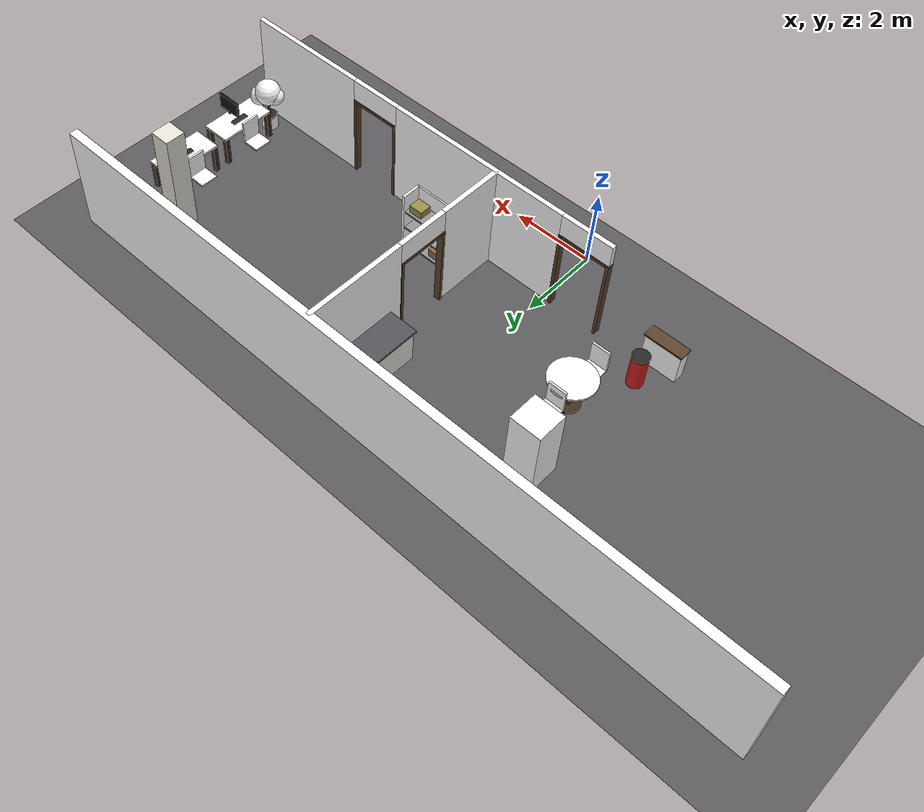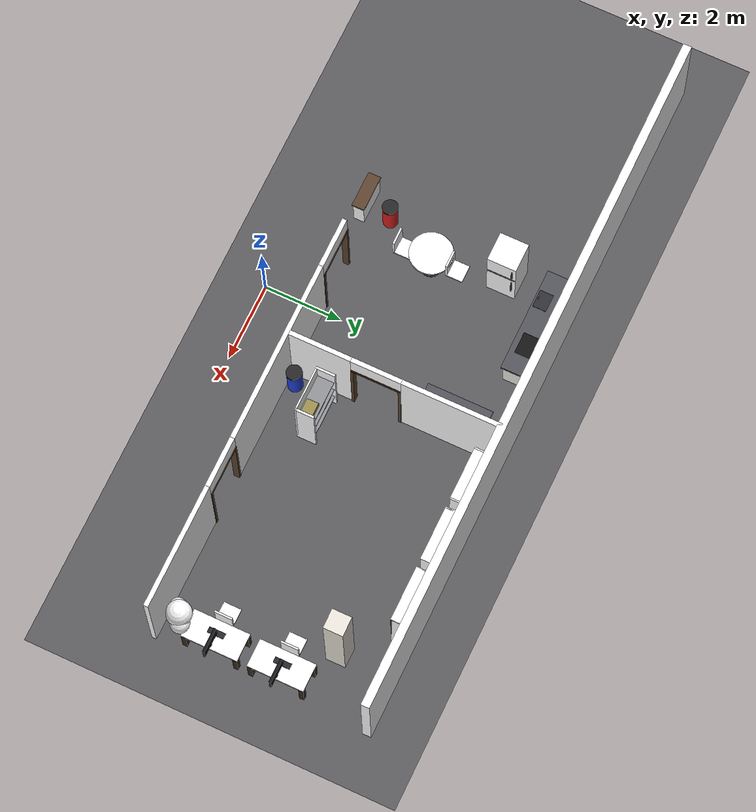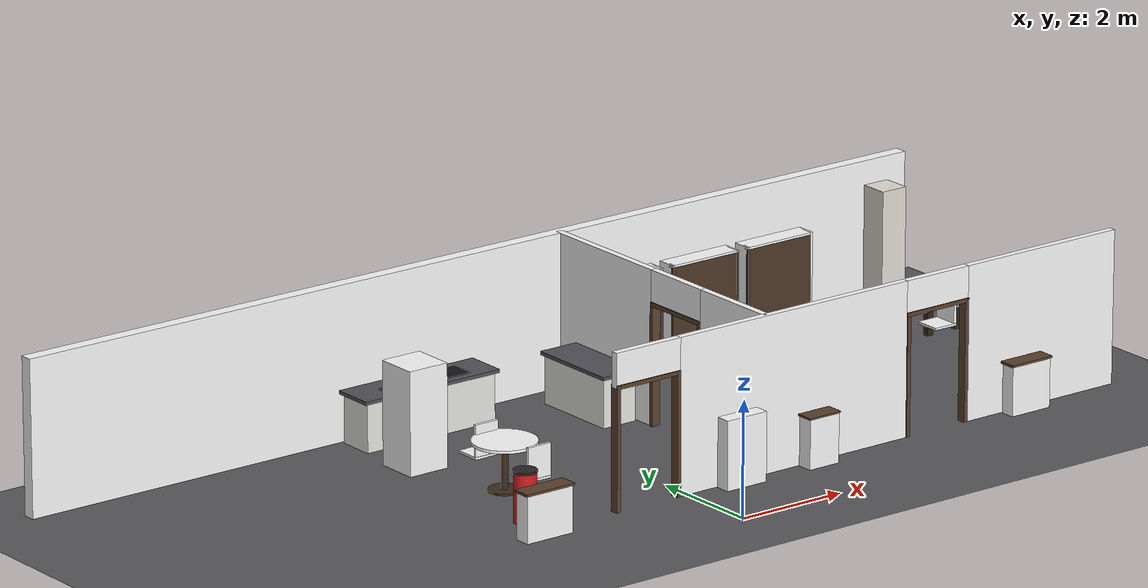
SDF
<sdf version="1.9">
 <world name="dan_house">
  <model name="ground_plane">
   <static>true</static>
   <link name="link">
    <collision name="c"><geometry><plane><normal>0 0 1</normal><size>90 90</size></plane></geometry></collision>
    <visual name="v">
     <geometry><plane><normal>0 0 1</normal><size>90 90</size></plane></geometry>
     <material><diffuse>0.35 0.35 0.36 1</diffuse></material>
    </visual>
   </link>
  </model>
  <model name="wall_north_0">
   <pose>0.000 7.0 1.35 0 0 0</pose>
   <static>true</static>
   <link name="link">
    <collision name="c"><geometry><box><size>18.000 0.22 2.7</size></box></geometry></collision>
    <visual name="v">
     <geometry><box><size>18.000 0.22 2.7</size></box></geometry>
     <material>
      <diffuse>1 1 1 1</diffuse>
      <pbr>
       <metal>
        <albedo_map>textures/wallpaper.jpg</albedo_map>
        <metalness>0.0</metalness>
        <roughness>0.85</roughness>
       </metal>
      </pbr>
     </material>
    </visual>
   </link>
  </model>
  <model name="wall_corr_north_2">
   <pose>2.200 1.5 1.35 0 0 0</pose>
   <static>true</static>
   <link name="link">
    <collision name="c"><geometry><box><size>4.700 0.12 2.7</size></box></geometry></collision>
    <visual name="v">
     <geometry><box><size>4.700 0.12 2.7</size></box></geometry>
     <material>
      <diffuse>1 1 1 1</diffuse>
      <pbr>
       <metal>
        <albedo_map>textures/wallpaper.jpg</albedo_map>
        <metalness>0.0</metalness>
        <roughness>0.85</roughness>
       </metal>
      </pbr>
     </material>
    </visual>
   </link>
  </model>
  <model name="wall_corr_north_3">
   <pose>7.425 1.5 1.35 0 0 0</pose>
   <static>true</static>
   <link name="link">
    <collision name="c"><geometry><box><size>3.150 0.12 2.7</size></box></geometry></collision>
    <visual name="v">
     <geometry><box><size>3.150 0.12 2.7</size></box></geometry>
     <material>
      <diffuse>1 1 1 1</diffuse>
      <pbr>
       <metal>
        <albedo_map>textures/wallpaper.jpg</albedo_map>
        <metalness>0.0</metalness>
        <roughness>0.85</roughness>
       </metal>
      </pbr>
     </material>
    </visual>
   </link>
  </model>
  <model name="wall_corr_north_door_-0.8_p0">
   <pose>-1.415 1.5 1.075 0 0 0</pose>
   <static>true</static>
   <link name="link">
    <visual name="v">
     <geometry><box><size>0.07 0.160 2.15</size></box></geometry>
     <material><diffuse>0.36 0.26 0.18 1</diffuse></material>
    </visual>
   </link>
  </model>
  <model name="wall_corr_north_door_-0.8_p1">
   <pose>-0.18500000000000005 1.5 1.075 0 0 0</pose>
   <static>true</static>
   <link name="link">
    <visual name="v">
     <geometry><box><size>0.07 0.160 2.15</size></box></geometry>
     <material><diffuse>0.36 0.26 0.18 1</diffuse></material>
    </visual>
   </link>
  </model>
  <model name="wall_corr_north_door_-0.8_top">
   <pose>-0.8 1.5 2.1149999999999998 0 0 0</pose>
   <static>true</static>
   <link name="link">
    <visual name="v">
     <geometry><box><size>1.3 0.160 0.07</size></box></geometry>
     <material><diffuse>0.36 0.26 0.18 1</diffuse></material>
    </visual>
   </link>
  </model>
  <model name="wall_corr_north_door_-0.8_lintel">
   <pose>-0.8 1.5 2.4000000000000004 0 0 0</pose>
   <static>true</static>
   <link name="link">
    <visual name="v">
     <geometry><box><size>1.3 0.12 0.600</size></box></geometry>
     <material>
      <diffuse>1 1 1 1</diffuse>
      <pbr>
       <metal>
        <albedo_map>textures/wallpaper.jpg</albedo_map>
        <metalness>0.0</metalness>
        <roughness>0.85</roughness>
       </metal>
      </pbr>
     </material>
    </visual>
   </link>
  </model>
  <model name="wall_corr_north_door_5.2_p0">
   <pose>4.585 1.5 1.075 0 0 0</pose>
   <static>true</static>
   <link name="link">
    <visual name="v">
     <geometry><box><size>0.07 0.160 2.15</size></box></geometry>
     <material><diffuse>0.36 0.26 0.18 1</diffuse></material>
    </visual>
   </link>
  </model>
  <model name="wall_corr_north_door_5.2_p1">
   <pose>5.815 1.5 1.075 0 0 0</pose>
   <static>true</static>
   <link name="link">
    <visual name="v">
     <geometry><box><size>0.07 0.160 2.15</size></box></geometry>
     <material><diffuse>0.36 0.26 0.18 1</diffuse></material>
    </visual>
   </link>
  </model>
  <model name="wall_corr_north_door_5.2_top">
   <pose>5.2 1.5 2.1149999999999998 0 0 0</pose>
   <static>true</static>
   <link name="link">
    <visual name="v">
     <geometry><box><size>1.3 0.160 0.07</size></box></geometry>
     <material><diffuse>0.36 0.26 0.18 1</diffuse></material>
    </visual>
   </link>
  </model>
  <model name="wall_corr_north_door_5.2_lintel">
   <pose>5.2 1.5 2.4000000000000004 0 0 0</pose>
   <static>true</static>
   <link name="link">
    <visual name="v">
     <geometry><box><size>1.3 0.12 0.600</size></box></geometry>
     <material>
      <diffuse>1 1 1 1</diffuse>
      <pbr>
       <metal>
        <albedo_map>textures/wallpaper.jpg</albedo_map>
        <metalness>0.0</metalness>
        <roughness>0.85</roughness>
       </metal>
      </pbr>
     </material>
    </visual>
   </link>
  </model>
  <model name="wall_kitchen_study_0">
   <pose>1.66 2.325 1.35 0 0 0</pose>
   <static>true</static>
   <link name="link">
    <collision name="c"><geometry><box><size>0.12 1.650 2.7</size></box></geometry></collision>
    <visual name="v">
     <geometry><box><size>0.12 1.650 2.7</size></box></geometry>
     <material>
      <diffuse>1 1 1 1</diffuse>
      <pbr>
       <metal>
        <albedo_map>textures/wallpaper.jpg</albedo_map>
        <metalness>0.0</metalness>
        <roughness>0.85</roughness>
       </metal>
      </pbr>
     </material>
    </visual>
   </link>
  </model>
  <model name="wall_kitchen_study_1">
   <pose>1.66 5.725 1.35 0 0 0</pose>
   <static>true</static>
   <link name="link">
    <collision name="c"><geometry><box><size>0.12 2.550 2.7</size></box></geometry></collision>
    <visual name="v">
     <geometry><box><size>0.12 2.550 2.7</size></box></geometry>
     <material>
      <diffuse>1 1 1 1</diffuse>
      <pbr>
       <metal>
        <albedo_map>textures/wallpaper.jpg</albedo_map>
        <metalness>0.0</metalness>
        <roughness>0.85</roughness>
       </metal>
      </pbr>
     </material>
    </visual>
   </link>
  </model>
  <model name="wall_kitchen_study_door_3.8_p0">
   <pose>1.66 3.1849999999999996 1.075 0 0 0</pose>
   <static>true</static>
   <link name="link">
    <visual name="v">
     <geometry><box><size>0.160 0.07 2.15</size></box></geometry>
     <material><diffuse>0.36 0.26 0.18 1</diffuse></material>
    </visual>
   </link>
  </model>
  <model name="wall_kitchen_study_door_3.8_p1">
   <pose>1.66 4.415 1.075 0 0 0</pose>
   <static>true</static>
   <link name="link">
    <visual name="v">
     <geometry><box><size>0.160 0.07 2.15</size></box></geometry>
     <material><diffuse>0.36 0.26 0.18 1</diffuse></material>
    </visual>
   </link>
  </model>
  <model name="wall_kitchen_study_door_3.8_top">
   <pose>1.66 3.8 2.1149999999999998 0 0 0</pose>
   <static>true</static>
   <link name="link">
    <visual name="v">
     <geometry><box><size>0.160 1.3 0.07</size></box></geometry>
     <material><diffuse>0.36 0.26 0.18 1</diffuse></material>
    </visual>
   </link>
  </model>
  <model name="wall_kitchen_study_door_3.8_lintel">
   <pose>1.66 3.8 2.4000000000000004 0 0 0</pose>
   <static>true</static>
   <link name="link">
    <visual name="v">
     <geometry><box><size>0.12 1.3 0.600</size></box></geometry>
     <material>
      <diffuse>1 1 1 1</diffuse>
      <pbr>
       <metal>
        <albedo_map>textures/wallpaper.jpg</albedo_map>
        <metalness>0.0</metalness>
        <roughness>0.85</roughness>
       </metal>
      </pbr>
     </material>
    </visual>
   </link>
  </model>
  <model name="window_n3">
   <pose>-1.2 6.95 1.6 0 0 0</pose>
   <static>true</static>
   <link name="link">
    <visual name="pane">
     <geometry><box><size>1.62 0.06 1.2</size></box></geometry>
     <material><diffuse>0.55 0.72 0.9 1</diffuse><emissive>0.14 0.2 0.3</emissive></material>
    </visual>
    <visual name="ft">
     <pose>0 0 0.65 0 0 0</pose>
     <geometry><box><size>1.80 0.1 0.08</size></box></geometry>
     <material><diffuse>0.95 0.95 0.95 1</diffuse></material>
    </visual>
    <visual name="fb">
     <pose>0 0 -0.65 0 0 0</pose>
     <geometry><box><size>1.80 0.1 0.08</size></box></geometry>
     <material><diffuse>0.95 0.95 0.95 1</diffuse></material>
    </visual>
    <visual name="fl">
     <pose>-0.90 0 0 0 0 0</pose>
     <geometry><box><size>0.1 0.1 1.2</size></box></geometry>
     <material><diffuse>0.95 0.95 0.95 1</diffuse></material>
    </visual>
    <visual name="fr">
     <pose>0.90 0 0 0 0 0</pose>
     <geometry><box><size>0.1 0.1 1.2</size></box></geometry>
     <material><diffuse>0.95 0.95 0.95 1</diffuse></material>
    </visual>
   </link>
  </model>
  <model name="window_n4">
   <pose>3.4 6.95 1.6 0 0 0</pose>
   <static>true</static>
   <link name="link">
    <visual name="pane">
     <geometry><box><size>1.62 0.06 1.2</size></box></geometry>
     <material><diffuse>0.55 0.72 0.9 1</diffuse><emissive>0.14 0.2 0.3</emissive></material>
    </visual>
    <visual name="ft">
     <pose>0 0 0.65 0 0 0</pose>
     <geometry><box><size>1.80 0.1 0.08</size></box></geometry>
     <material><diffuse>0.95 0.95 0.95 1</diffuse></material>
    </visual>
    <visual name="fb">
     <pose>0 0 -0.65 0 0 0</pose>
     <geometry><box><size>1.80 0.1 0.08</size></box></geometry>
     <material><diffuse>0.95 0.95 0.95 1</diffuse></material>
    </visual>
    <visual name="fl">
     <pose>-0.90 0 0 0 0 0</pose>
     <geometry><box><size>0.1 0.1 1.2</size></box></geometry>
     <material><diffuse>0.95 0.95 0.95 1</diffuse></material>
    </visual>
    <visual name="fr">
     <pose>0.90 0 0 0 0 0</pose>
     <geometry><box><size>0.1 0.1 1.2</size></box></geometry>
     <material><diffuse>0.95 0.95 0.95 1</diffuse></material>
    </visual>
   </link>
  </model>
  <model name="window_n5">
   <pose>7.0 6.95 1.6 0 0 0</pose>
   <static>true</static>
   <link name="link">
    <visual name="pane">
     <geometry><box><size>1.62 0.06 1.2</size></box></geometry>
     <material><diffuse>0.55 0.72 0.9 1</diffuse><emissive>0.14 0.2 0.3</emissive></material>
    </visual>
    <visual name="ft">
     <pose>0 0 0.65 0 0 0</pose>
     <geometry><box><size>1.80 0.1 0.08</size></box></geometry>
     <material><diffuse>0.95 0.95 0.95 1</diffuse></material>
    </visual>
    <visual name="fb">
     <pose>0 0 -0.65 0 0 0</pose>
     <geometry><box><size>1.80 0.1 0.08</size></box></geometry>
     <material><diffuse>0.95 0.95 0.95 1</diffuse></material>
    </visual>
    <visual name="fl">
     <pose>-0.90 0 0 0 0 0</pose>
     <geometry><box><size>0.1 0.1 1.2</size></box></geometry>
     <material><diffuse>0.95 0.95 0.95 1</diffuse></material>
    </visual>
    <visual name="fr">
     <pose>0.90 0 0 0 0 0</pose>
     <geometry><box><size>0.1 0.1 1.2</size></box></geometry>
     <material><diffuse>0.95 0.95 0.95 1</diffuse></material>
    </visual>
   </link>
  </model>
  <model name="kitchen_counter">
   <pose>-1.6 6.5 0 0 0 0.0</pose>
   <static>true</static>
   <link name="link">
    <collision name="c">
     <pose>0 0 0.45 0 0 0</pose>
     <geometry><box><size>2.6 0.65 0.9</size></box></geometry>
    </collision>
    <visual name="cab">
     <pose>0 0 0.425 0 0 0</pose>
     <geometry><box><size>2.6 0.65 0.85</size></box></geometry>
     <material><diffuse>0.92 0.92 0.9 1</diffuse></material>
    </visual>
    <visual name="top">
     <pose>0 0 0.88 0 0 0</pose>
     <geometry><box><size>2.72 0.74 0.06</size></box></geometry>
     <material><diffuse>0.32 0.32 0.35 1</diffuse></material>
    </visual>
    <visual name="sink">
     <pose>-0.6 -0.15 0.912 0 0 0</pose>
     <geometry><box><size>0.45 0.35 0.02</size></box></geometry>
     <material><diffuse>0.18 0.18 0.2 1</diffuse></material>
    </visual>
    <visual name="faucet">
     <pose>-0.6 -0.28 1.0 0 0 0</pose>
     <geometry><cylinder><radius>0.015</radius><length>0.22</length></cylinder></geometry>
     <material><diffuse>0.75 0.75 0.78 1</diffuse></material>
    </visual>
    <visual name="stove">
     <pose>0.6 0 0.912 0 0 0</pose>
     <geometry><box><size>0.55 0.45 0.02</size></box></geometry>
     <material><diffuse>0.08 0.08 0.08 1</diffuse></material>
    </visual>
   </link>
  </model>
  <model name="fridge">
   <pose>-2.66 5.2 0 0 0 1.5708</pose>
   <static>true</static>
   <link name="link">
    <collision name="c">
     <pose>0 0 0.9 0 0 0</pose>
     <geometry><box><size>0.75 0.75 1.8</size></box></geometry>
    </collision>
    <visual name="body">
     <pose>0 0 0.9 0 0 0</pose>
     <geometry><box><size>0.75 0.75 1.8</size></box></geometry>
     <material>
      <diffuse>1 1 1 1</diffuse>
      <pbr>
       <metal>
        <albedo_map>textures/metal.jpg</albedo_map>
        <metalness>0.0</metalness>
        <roughness>0.85</roughness>
       </metal>
      </pbr>
     </material>
    </visual>
    <visual name="split">
     <pose>0 -0.38 1.15 0 0 0</pose>
     <geometry><box><size>0.72 0.02 0.03</size></box></geometry>
     <material><diffuse>0.4 0.4 0.42 1</diffuse></material>
    </visual>
    <visual name="h1">
     <pose>0.28 -0.4 0.75 0 0 0</pose>
     <geometry><box><size>0.03 0.03 0.5</size></box></geometry>
     <material><diffuse>0.3 0.3 0.32 1</diffuse></material>
    </visual>
    <visual name="h2">
     <pose>0.28 -0.4 1.45 0 0 0</pose>
     <geometry><box><size>0.03 0.03 0.4</size></box></geometry>
     <material><diffuse>0.3 0.3 0.32 1</diffuse></material>
    </visual>
   </link>
  </model>
  <model name="counter_side">
   <pose>1.22 5.6 0 0 0 0.0</pose>
   <static>true</static>
   <link name="link">
    <collision name="c">
     <pose>0 0 0.45 0 0 0</pose>
     <geometry><box><size>0.65 1.6 0.9</size></box></geometry>
    </collision>
    <visual name="cab">
     <pose>0 0 0.425 0 0 0</pose>
     <geometry><box><size>0.65 1.6 0.85</size></box></geometry>
     <material><diffuse>0.92 0.92 0.9 1</diffuse></material>
    </visual>
    <visual name="top">
     <pose>0 0 0.88 0 0 0</pose>
     <geometry><box><size>0.74 1.7 0.06</size></box></geometry>
     <material><diffuse>0.32 0.32 0.35 1</diffuse></material>
    </visual>
   </link>
  </model>
  <model name="dining_table">
   <pose>-2.2 3.4 0 0 0 0</pose>
   <static>true</static>
   <link name="link">
    <collision name="top_c">
     <pose>0 0 0.835 0 0 0</pose>
     <geometry><cylinder><radius>0.55</radius><length>0.05</length></cylinder></geometry>
    </collision>
    <collision name="post_c">
     <pose>0 0 0.420 0 0 0</pose>
     <geometry><cylinder><radius>0.06</radius><length>0.78</length></cylinder></geometry>
    </collision>
    <visual name="top">
     <pose>0 0 0.835 0 0 0</pose>
     <geometry><cylinder><radius>0.55</radius><length>0.05</length></cylinder></geometry>
     <material>
      <diffuse>1 1 1 1</diffuse>
      <pbr>
       <metal>
        <albedo_map>textures/wood_dark.jpg</albedo_map>
        <metalness>0.0</metalness>
        <roughness>0.85</roughness>
       </metal>
      </pbr>
     </material>
    </visual>
    <visual name="post">
     <pose>0 0 0.420 0 0 0</pose>
     <geometry><cylinder><radius>0.06</radius><length>0.78</length></cylinder></geometry>
     <material><diffuse>0.25 0.18 0.12 1</diffuse></material>
    </visual>
    <visual name="base">
     <pose>0 0 0.015 0 0 0</pose>
     <geometry><cylinder><radius>0.28</radius><length>0.03</length></cylinder></geometry>
     <material><diffuse>0.25 0.18 0.12 1</diffuse></material>
    </visual>
   </link>
  </model>
  <model name="chair">
   <pose>-2.2 2.7 0 0 0 0.0</pose>
   <static>true</static>
   <link name="link">
    <collision name="c">
     <pose>0 0 0.475 0 0 0</pose>
     <geometry><box><size>0.45 0.45 0.95</size></box></geometry>
    </collision>
    <visual name="seat">
     <pose>0 0 0.45 0 0 0</pose>
     <geometry><box><size>0.45 0.45 0.04</size></box></geometry>
     <material>
      <diffuse>1 1 1 1</diffuse>
      <pbr>
       <metal>
        <albedo_map>textures/wood_dark.jpg</albedo_map>
        <metalness>0.0</metalness>
        <roughness>0.85</roughness>
       </metal>
      </pbr>
     </material>
    </visual>
    <visual name="back">
     <pose>0 -0.2 0.75 0 0 0</pose>
     <geometry><box><size>0.45 0.05 0.55</size></box></geometry>
     <material>
      <diffuse>1 1 1 1</diffuse>
      <pbr>
       <metal>
        <albedo_map>textures/wood_dark.jpg</albedo_map>
        <metalness>0.0</metalness>
        <roughness>0.85</roughness>
       </metal>
      </pbr>
     </material>
    </visual>
   </link>
  </model>
  <model name="chair_2">
   <pose>-2.2 4.1 0 0 0 0.0</pose>
   <static>true</static>
   <link name="link">
    <collision name="c">
     <pose>0 0 0.475 0 0 0</pose>
     <geometry><box><size>0.45 0.45 0.95</size></box></geometry>
    </collision>
    <visual name="seat">
     <pose>0 0 0.45 0 0 0</pose>
     <geometry><box><size>0.45 0.45 0.04</size></box></geometry>
     <material>
      <diffuse>1 1 1 1</diffuse>
      <pbr>
       <metal>
        <albedo_map>textures/wood_dark.jpg</albedo_map>
        <metalness>0.0</metalness>
        <roughness>0.85</roughness>
       </metal>
      </pbr>
     </material>
    </visual>
    <visual name="back">
     <pose>0 -0.2 0.75 0 0 0</pose>
     <geometry><box><size>0.45 0.05 0.55</size></box></geometry>
     <material>
      <diffuse>1 1 1 1</diffuse>
      <pbr>
       <metal>
        <albedo_map>textures/wood_dark.jpg</albedo_map>
        <metalness>0.0</metalness>
        <roughness>0.85</roughness>
       </metal>
      </pbr>
     </material>
    </visual>
   </link>
  </model>
  <model name="bookshelf_2">
   <pose>2.8 6.71 0 0 0 0.0</pose>
   <static>true</static>
   <link name="link">
    <collision name="c">
     <pose>0 0 0.9 0 0 0</pose>
     <geometry><box><size>1.4 0.35 1.8</size></box></geometry>
    </collision>
    <visual name="sl">
     <pose>-0.68 0 0.9 0 0 0</pose>
     <geometry><box><size>0.04 0.35 1.8</size></box></geometry>
     <material>
      <diffuse>1 1 1 1</diffuse>
      <pbr>
       <metal>
        <albedo_map>textures/wood_dark.jpg</albedo_map>
        <metalness>0.0</metalness>
        <roughness>0.85</roughness>
       </metal>
      </pbr>
     </material>
    </visual>
    <visual name="sr">
     <pose>0.68 0 0.9 0 0 0</pose>
     <geometry><box><size>0.04 0.35 1.8</size></box></geometry>
     <material>
      <diffuse>1 1 1 1</diffuse>
      <pbr>
       <metal>
        <albedo_map>textures/wood_dark.jpg</albedo_map>
        <metalness>0.0</metalness>
        <roughness>0.85</roughness>
       </metal>
      </pbr>
     </material>
    </visual>
    <visual name="top">
     <pose>0 0 1.78 0 0 0</pose>
     <geometry><box><size>1.4 0.35 0.04</size></box></geometry>
     <material>
      <diffuse>1 1 1 1</diffuse>
      <pbr>
       <metal>
        <albedo_map>textures/wood_dark.jpg</albedo_map>
        <metalness>0.0</metalness>
        <roughness>0.85</roughness>
       </metal>
      </pbr>
     </material>
    </visual>
    <visual name="bot">
     <pose>0 0 0.02 0 0 0</pose>
     <geometry><box><size>1.4 0.35 0.04</size></box></geometry>
     <material>
      <diffuse>1 1 1 1</diffuse>
      <pbr>
       <metal>
        <albedo_map>textures/wood_dark.jpg</albedo_map>
        <metalness>0.0</metalness>
        <roughness>0.85</roughness>
       </metal>
      </pbr>
     </material>
    </visual>
    <visual name="back">
     <pose>0 -0.155 0.9 0 0 0</pose>
     <geometry><box><size>1.4 0.04 1.72</size></box></geometry>
     <material><diffuse>0.3 0.22 0.15 1</diffuse></material>
    </visual>
    <visual name="s1">
     <pose>0 0.02 0.45 0 0 0</pose>
     <geometry><box><size>1.32 0.3 0.03</size></box></geometry>
     <material><diffuse>0.4 0.28 0.18 1</diffuse></material>
    </visual>
    <visual name="s2">
     <pose>0 0.02 0.9 0 0 0</pose>
     <geometry><box><size>1.32 0.3 0.03</size></box></geometry>
     <material><diffuse>0.4 0.28 0.18 1</diffuse></material>
    </visual>
    <visual name="s3">
     <pose>0 0.02 1.35 0 0 0</pose>
     <geometry><box><size>1.32 0.3 0.03</size></box></geometry>
     <material><diffuse>0.4 0.28 0.18 1</diffuse></material>
    </visual>
    <visual name="b1">
     <pose>-0.5 0 0.585 0 0 0</pose>
     <geometry><box><size>0.07 0.24 0.24</size></box></geometry>
     <material><diffuse>0.65 0.25 0.2 1</diffuse></material>
    </visual>
    <visual name="b2">
     <pose>-0.38 0 0.585 0 0 0</pose>
     <geometry><box><size>0.07 0.24 0.24</size></box></geometry>
     <material><diffuse>0.2 0.35 0.6 1</diffuse></material>
    </visual>
    <visual name="b3">
     <pose>-0.26 0 0.585 0 0 0</pose>
     <geometry><box><size>0.07 0.24 0.24</size></box></geometry>
     <material><diffuse>0.25 0.5 0.3 1</diffuse></material>
    </visual>
    <visual name="b4">
     <pose>-0.14 0 0.585 0 0 0</pose>
     <geometry><box><size>0.07 0.24 0.24</size></box></geometry>
     <material><diffuse>0.8 0.7 0.2 1</diffuse></material>
    </visual>
    <visual name="b5">
     <pose>-0.020000000000000018 0 0.585 0 0 0</pose>
     <geometry><box><size>0.07 0.24 0.24</size></box></geometry>
     <material><diffuse>0.5 0.3 0.55 1</diffuse></material>
    </visual>
   </link>
  </model>
  <model name="bookshelf_3">
   <pose>4.4 6.71 0 0 0 0.0</pose>
   <static>true</static>
   <link name="link">
    <collision name="c">
     <pose>0 0 0.9 0 0 0</pose>
     <geometry><box><size>1.4 0.35 1.8</size></box></geometry>
    </collision>
    <visual name="sl">
     <pose>-0.68 0 0.9 0 0 0</pose>
     <geometry><box><size>0.04 0.35 1.8</size></box></geometry>
     <material>
      <diffuse>1 1 1 1</diffuse>
      <pbr>
       <metal>
        <albedo_map>textures/wood_dark.jpg</albedo_map>
        <metalness>0.0</metalness>
        <roughness>0.85</roughness>
       </metal>
      </pbr>
     </material>
    </visual>
    <visual name="sr">
     <pose>0.68 0 0.9 0 0 0</pose>
     <geometry><box><size>0.04 0.35 1.8</size></box></geometry>
     <material>
      <diffuse>1 1 1 1</diffuse>
      <pbr>
       <metal>
        <albedo_map>textures/wood_dark.jpg</albedo_map>
        <metalness>0.0</metalness>
        <roughness>0.85</roughness>
       </metal>
      </pbr>
     </material>
    </visual>
    <visual name="top">
     <pose>0 0 1.78 0 0 0</pose>
     <geometry><box><size>1.4 0.35 0.04</size></box></geometry>
     <material>
      <diffuse>1 1 1 1</diffuse>
      <pbr>
       <metal>
        <albedo_map>textures/wood_dark.jpg</albedo_map>
        <metalness>0.0</metalness>
        <roughness>0.85</roughness>
       </metal>
      </pbr>
     </material>
    </visual>
    <visual name="bot">
     <pose>0 0 0.02 0 0 0</pose>
     <geometry><box><size>1.4 0.35 0.04</size></box></geometry>
     <material>
      <diffuse>1 1 1 1</diffuse>
      <pbr>
       <metal>
        <albedo_map>textures/wood_dark.jpg</albedo_map>
        <metalness>0.0</metalness>
        <roughness>0.85</roughness>
       </metal>
      </pbr>
     </material>
    </visual>
    <visual name="back">
     <pose>0 -0.155 0.9 0 0 0</pose>
     <geometry><box><size>1.4 0.04 1.72</size></box></geometry>
     <material><diffuse>0.3 0.22 0.15 1</diffuse></material>
    </visual>
    <visual name="s1">
     <pose>0 0.02 0.45 0 0 0</pose>
     <geometry><box><size>1.32 0.3 0.03</size></box></geometry>
     <material><diffuse>0.4 0.28 0.18 1</diffuse></material>
    </visual>
    <visual name="s2">
     <pose>0 0.02 0.9 0 0 0</pose>
     <geometry><box><size>1.32 0.3 0.03</size></box></geometry>
     <material><diffuse>0.4 0.28 0.18 1</diffuse></material>
    </visual>
    <visual name="s3">
     <pose>0 0.02 1.35 0 0 0</pose>
     <geometry><box><size>1.32 0.3 0.03</size></box></geometry>
     <material><diffuse>0.4 0.28 0.18 1</diffuse></material>
    </visual>
    <visual name="b1">
     <pose>-0.5 0 0.585 0 0 0</pose>
     <geometry><box><size>0.07 0.24 0.24</size></box></geometry>
     <material><diffuse>0.65 0.25 0.2 1</diffuse></material>
    </visual>
    <visual name="b2">
     <pose>-0.38 0 0.585 0 0 0</pose>
     <geometry><box><size>0.07 0.24 0.24</size></box></geometry>
     <material><diffuse>0.2 0.35 0.6 1</diffuse></material>
    </visual>
    <visual name="b3">
     <pose>-0.26 0 0.585 0 0 0</pose>
     <geometry><box><size>0.07 0.24 0.24</size></box></geometry>
     <material><diffuse>0.25 0.5 0.3 1</diffuse></material>
    </visual>
    <visual name="b4">
     <pose>-0.14 0 0.585 0 0 0</pose>
     <geometry><box><size>0.07 0.24 0.24</size></box></geometry>
     <material><diffuse>0.8 0.7 0.2 1</diffuse></material>
    </visual>
    <visual name="b5">
     <pose>-0.020000000000000018 0 0.585 0 0 0</pose>
     <geometry><box><size>0.07 0.24 0.24</size></box></geometry>
     <material><diffuse>0.5 0.3 0.55 1</diffuse></material>
    </visual>
   </link>
  </model>
  <model name="bookshelf_4">
   <pose>6.0 6.71 0 0 0 0.0</pose>
   <static>true</static>
   <link name="link">
    <collision name="c">
     <pose>0 0 0.9 0 0 0</pose>
     <geometry><box><size>1.4 0.35 1.8</size></box></geometry>
    </collision>
    <visual name="sl">
     <pose>-0.68 0 0.9 0 0 0</pose>
     <geometry><box><size>0.04 0.35 1.8</size></box></geometry>
     <material>
      <diffuse>1 1 1 1</diffuse>
      <pbr>
       <metal>
        <albedo_map>textures/wood_dark.jpg</albedo_map>
        <metalness>0.0</metalness>
        <roughness>0.85</roughness>
       </metal>
      </pbr>
     </material>
    </visual>
    <visual name="sr">
     <pose>0.68 0 0.9 0 0 0</pose>
     <geometry><box><size>0.04 0.35 1.8</size></box></geometry>
     <material>
      <diffuse>1 1 1 1</diffuse>
      <pbr>
       <metal>
        <albedo_map>textures/wood_dark.jpg</albedo_map>
        <metalness>0.0</metalness>
        <roughness>0.85</roughness>
       </metal>
      </pbr>
     </material>
    </visual>
    <visual name="top">
     <pose>0 0 1.78 0 0 0</pose>
     <geometry><box><size>1.4 0.35 0.04</size></box></geometry>
     <material>
      <diffuse>1 1 1 1</diffuse>
      <pbr>
       <metal>
        <albedo_map>textures/wood_dark.jpg</albedo_map>
        <metalness>0.0</metalness>
        <roughness>0.85</roughness>
       </metal>
      </pbr>
     </material>
    </visual>
    <visual name="bot">
     <pose>0 0 0.02 0 0 0</pose>
     <geometry><box><size>1.4 0.35 0.04</size></box></geometry>
     <material>
      <diffuse>1 1 1 1</diffuse>
      <pbr>
       <metal>
        <albedo_map>textures/wood_dark.jpg</albedo_map>
        <metalness>0.0</metalness>
        <roughness>0.85</roughness>
       </metal>
      </pbr>
     </material>
    </visual>
    <visual name="back">
     <pose>0 -0.155 0.9 0 0 0</pose>
     <geometry><box><size>1.4 0.04 1.72</size></box></geometry>
     <material><diffuse>0.3 0.22 0.15 1</diffuse></material>
    </visual>
    <visual name="s1">
     <pose>0 0.02 0.45 0 0 0</pose>
     <geometry><box><size>1.32 0.3 0.03</size></box></geometry>
     <material><diffuse>0.4 0.28 0.18 1</diffuse></material>
    </visual>
    <visual name="s2">
     <pose>0 0.02 0.9 0 0 0</pose>
     <geometry><box><size>1.32 0.3 0.03</size></box></geometry>
     <material><diffuse>0.4 0.28 0.18 1</diffuse></material>
    </visual>
    <visual name="s3">
     <pose>0 0.02 1.35 0 0 0</pose>
     <geometry><box><size>1.32 0.3 0.03</size></box></geometry>
     <material><diffuse>0.4 0.28 0.18 1</diffuse></material>
    </visual>
    <visual name="b1">
     <pose>-0.5 0 0.585 0 0 0</pose>
     <geometry><box><size>0.07 0.24 0.24</size></box></geometry>
     <material><diffuse>0.65 0.25 0.2 1</diffuse></material>
    </visual>
    <visual name="b2">
     <pose>-0.38 0 0.585 0 0 0</pose>
     <geometry><box><size>0.07 0.24 0.24</size></box></geometry>
     <material><diffuse>0.2 0.35 0.6 1</diffuse></material>
    </visual>
    <visual name="b3">
     <pose>-0.26 0 0.585 0 0 0</pose>
     <geometry><box><size>0.07 0.24 0.24</size></box></geometry>
     <material><diffuse>0.25 0.5 0.3 1</diffuse></material>
    </visual>
    <visual name="b4">
     <pose>-0.14 0 0.585 0 0 0</pose>
     <geometry><box><size>0.07 0.24 0.24</size></box></geometry>
     <material><diffuse>0.8 0.7 0.2 1</diffuse></material>
    </visual>
    <visual name="b5">
     <pose>-0.020000000000000018 0 0.585 0 0 0</pose>
     <geometry><box><size>0.07 0.24 0.24</size></box></geometry>
     <material><diffuse>0.5 0.3 0.55 1</diffuse></material>
    </visual>
   </link>
  </model>
  <model name="desk">
   <pose>8.5 4.6 0 0 0 -1.5708</pose>
   <static>true</static>
   <link name="link">
    <collision name="c">
     <pose>0 0 0.38 0 0 0</pose>
     <geometry><box><size>1.4 0.7 0.76</size></box></geometry>
    </collision>
    <visual name="top">
     <pose>0 0 0.75 0 0 0</pose>
     <geometry><box><size>1.45 0.72 0.05</size></box></geometry>
     <material>
      <diffuse>1 1 1 1</diffuse>
      <pbr>
       <metal>
        <albedo_map>textures/wood_dark.jpg</albedo_map>
        <metalness>0.0</metalness>
        <roughness>0.85</roughness>
       </metal>
      </pbr>
     </material>
    </visual>
    <visual name="leg1">
     <pose>-0.66 -0.3 0.36 0 0 0</pose>
     <geometry><box><size>0.12 0.12 0.72</size></box></geometry>
     <material><diffuse>0.2 0.15 0.1 1</diffuse></material>
    </visual>
    <visual name="leg2">
     <pose>0.66 -0.3 0.36 0 0 0</pose>
     <geometry><box><size>0.12 0.12 0.72</size></box></geometry>
     <material><diffuse>0.2 0.15 0.1 1</diffuse></material>
    </visual>
    <visual name="leg3">
     <pose>-0.66 0.3 0.36 0 0 0</pose>
     <geometry><box><size>0.12 0.12 0.72</size></box></geometry>
     <material><diffuse>0.2 0.15 0.1 1</diffuse></material>
    </visual>
    <visual name="leg4">
     <pose>0.66 0.3 0.36 0 0 0</pose>
     <geometry><box><size>0.12 0.12 0.72</size></box></geometry>
     <material><diffuse>0.2 0.15 0.1 1</diffuse></material>
    </visual>
    <visual name="monitor">
     <pose>0 0.28 1.03 0 0 0</pose>
     <geometry><box><size>0.06 0.62 0.38</size></box></geometry>
     <material><diffuse>0.08 0.08 0.09 1</diffuse></material>
    </visual>
    <visual name="mstand">
     <pose>0 0.28 0.83 0 0 0</pose>
     <geometry><box><size>0.06 0.06 0.12</size></box></geometry>
     <material><diffuse>0.3 0.3 0.32 1</diffuse></material>
    </visual>
    <visual name="keyb">
     <pose>0 -0.05 0.785 0 0 0</pose>
     <geometry><box><size>0.42 0.14 0.02</size></box></geometry>
     <material><diffuse>0.15 0.15 0.17 1</diffuse></material>
    </visual>
   </link>
  </model>
  <model name="desk_2">
   <pose>8.5 2.9 0 0 0 -1.5708</pose>
   <static>true</static>
   <link name="link">
    <collision name="c">
     <pose>0 0 0.38 0 0 0</pose>
     <geometry><box><size>1.4 0.7 0.76</size></box></geometry>
    </collision>
    <visual name="top">
     <pose>0 0 0.75 0 0 0</pose>
     <geometry><box><size>1.45 0.72 0.05</size></box></geometry>
     <material>
      <diffuse>1 1 1 1</diffuse>
      <pbr>
       <metal>
        <albedo_map>textures/wood_dark.jpg</albedo_map>
        <metalness>0.0</metalness>
        <roughness>0.85</roughness>
       </metal>
      </pbr>
     </material>
    </visual>
    <visual name="leg1">
     <pose>-0.66 -0.3 0.36 0 0 0</pose>
     <geometry><box><size>0.12 0.12 0.72</size></box></geometry>
     <material><diffuse>0.2 0.15 0.1 1</diffuse></material>
    </visual>
    <visual name="leg2">
     <pose>0.66 -0.3 0.36 0 0 0</pose>
     <geometry><box><size>0.12 0.12 0.72</size></box></geometry>
     <material><diffuse>0.2 0.15 0.1 1</diffuse></material>
    </visual>
    <visual name="leg3">
     <pose>-0.66 0.3 0.36 0 0 0</pose>
     <geometry><box><size>0.12 0.12 0.72</size></box></geometry>
     <material><diffuse>0.2 0.15 0.1 1</diffuse></material>
    </visual>
    <visual name="leg4">
     <pose>0.66 0.3 0.36 0 0 0</pose>
     <geometry><box><size>0.12 0.12 0.72</size></box></geometry>
     <material><diffuse>0.2 0.15 0.1 1</diffuse></material>
    </visual>
    <visual name="monitor">
     <pose>0 0.28 1.03 0 0 0</pose>
     <geometry><box><size>0.06 0.62 0.38</size></box></geometry>
     <material><diffuse>0.08 0.08 0.09 1</diffuse></material>
    </visual>
    <visual name="mstand">
     <pose>0 0.28 0.83 0 0 0</pose>
     <geometry><box><size>0.06 0.06 0.12</size></box></geometry>
     <material><diffuse>0.3 0.3 0.32 1</diffuse></material>
    </visual>
    <visual name="keyb">
     <pose>0 -0.05 0.785 0 0 0</pose>
     <geometry><box><size>0.42 0.14 0.02</size></box></geometry>
     <material><diffuse>0.15 0.15 0.17 1</diffuse></material>
    </visual>
   </link>
  </model>
  <model name="chair_3">
   <pose>7.85 4.6 0 0 0 1.5708</pose>
   <static>true</static>
   <link name="link">
    <collision name="c">
     <pose>0 0 0.475 0 0 0</pose>
     <geometry><box><size>0.45 0.45 0.95</size></box></geometry>
    </collision>
    <visual name="seat">
     <pose>0 0 0.45 0 0 0</pose>
     <geometry><box><size>0.45 0.45 0.04</size></box></geometry>
     <material>
      <diffuse>1 1 1 1</diffuse>
      <pbr>
       <metal>
        <albedo_map>textures/wood_dark.jpg</albedo_map>
        <metalness>0.0</metalness>
        <roughness>0.85</roughness>
       </metal>
      </pbr>
     </material>
    </visual>
    <visual name="back">
     <pose>0 -0.2 0.75 0 0 0</pose>
     <geometry><box><size>0.45 0.05 0.55</size></box></geometry>
     <material>
      <diffuse>1 1 1 1</diffuse>
      <pbr>
       <metal>
        <albedo_map>textures/wood_dark.jpg</albedo_map>
        <metalness>0.0</metalness>
        <roughness>0.85</roughness>
       </metal>
      </pbr>
     </material>
    </visual>
   </link>
  </model>
  <model name="chair_4">
   <pose>7.85 2.9 0 0 0 1.5708</pose>
   <static>true</static>
   <link name="link">
    <collision name="c">
     <pose>0 0 0.475 0 0 0</pose>
     <geometry><box><size>0.45 0.45 0.95</size></box></geometry>
    </collision>
    <visual name="seat">
     <pose>0 0 0.45 0 0 0</pose>
     <geometry><box><size>0.45 0.45 0.04</size></box></geometry>
     <material>
      <diffuse>1 1 1 1</diffuse>
      <pbr>
       <metal>
        <albedo_map>textures/wood_dark.jpg</albedo_map>
        <metalness>0.0</metalness>
        <roughness>0.85</roughness>
       </metal>
      </pbr>
     </material>
    </visual>
    <visual name="back">
     <pose>0 -0.2 0.75 0 0 0</pose>
     <geometry><box><size>0.45 0.05 0.55</size></box></geometry>
     <material>
      <diffuse>1 1 1 1</diffuse>
      <pbr>
       <metal>
        <albedo_map>textures/wood_dark.jpg</albedo_map>
        <metalness>0.0</metalness>
        <roughness>0.85</roughness>
       </metal>
      </pbr>
     </material>
    </visual>
   </link>
  </model>
  <model name="pillar">
   <pose>7.5 5.6 0 0 0 0</pose>
   <static>true</static>
   <link name="link">
    <collision name="c">
     <pose>0 0 1.35 0 0 0</pose>
     <geometry><box><size>0.5 0.5 2.7</size></box></geometry>
    </collision>
    <visual name="v">
     <pose>0 0 1.35 0 0 0</pose>
     <geometry><box><size>0.5 0.5 2.7</size></box></geometry>
     <material><diffuse>0.9 0.88 0.84 1</diffuse></material>
    </visual>
   </link>
  </model>
  <model name="rack">
   <pose>2.5 2.6 0 0 0 0.0</pose>
   <static>true</static>
   <link name="link">
    <collision name="c">
     <pose>0 0 0.95 0 0 0</pose>
     <geometry><box><size>1.2 0.5 1.9</size></box></geometry>
    </collision>
    <visual name="back">
     <pose>0 -0.230 0.95 0 0 0</pose>
     <geometry><box><size>1.2 0.04 1.9</size></box></geometry>
     <material>
      <diffuse>1 1 1 1</diffuse>
      <pbr>
       <metal>
        <albedo_map>textures/metal.jpg</albedo_map>
        <metalness>0.0</metalness>
        <roughness>0.85</roughness>
       </metal>
      </pbr>
     </material>
    </visual>
    <visual name="sl">
     <pose>-0.570 0 0.95 0 0 0</pose>
     <geometry><box><size>0.06 0.5 1.9</size></box></geometry>
     <material>
      <diffuse>1 1 1 1</diffuse>
      <pbr>
       <metal>
        <albedo_map>textures/metal.jpg</albedo_map>
        <metalness>0.0</metalness>
        <roughness>0.85</roughness>
       </metal>
      </pbr>
     </material>
    </visual>
    <visual name="sr">
     <pose>0.570 0 0.95 0 0 0</pose>
     <geometry><box><size>0.06 0.5 1.9</size></box></geometry>
     <material>
      <diffuse>1 1 1 1</diffuse>
      <pbr>
       <metal>
        <albedo_map>textures/metal.jpg</albedo_map>
        <metalness>0.0</metalness>
        <roughness>0.85</roughness>
       </metal>
      </pbr>
     </material>
    </visual>
    <visual name="shelf1">
     <pose>0 0 0.475 0 0 0</pose>
     <geometry><box><size>1.10 0.44 0.04</size></box></geometry>
     <material><diffuse>0.55 0.56 0.58 1</diffuse></material>
    </visual>
    <visual name="shelf2">
     <pose>0 0 0.950 0 0 0</pose>
     <geometry><box><size>1.10 0.44 0.04</size></box></geometry>
     <material><diffuse>0.55 0.56 0.58 1</diffuse></material>
    </visual>
    <visual name="shelf3">
     <pose>0 0 1.425 0 0 0</pose>
     <geometry><box><size>1.10 0.44 0.04</size></box></geometry>
     <material><diffuse>0.55 0.56 0.58 1</diffuse></material>
    </visual>
    <visual name="box1">
     <pose>-0.30 0 0.55 0 0 0</pose>
     <geometry><box><size>0.34 0.3 0.28</size></box></geometry>
     <material><diffuse>0.55 0.4 0.25 1</diffuse></material>
    </visual>
    <visual name="box2">
     <pose>0.00 0 1.02 0 0 0</pose>
     <geometry><box><size>0.34 0.3 0.28</size></box></geometry>
     <material><diffuse>0.3 0.35 0.5 1</diffuse></material>
    </visual>
    <visual name="box3">
     <pose>0.30 0 1.49 0 0 0</pose>
     <geometry><box><size>0.34 0.3 0.28</size></box></geometry>
     <material><diffuse>0.6 0.55 0.3 1</diffuse></material>
    </visual>
   </link>
  </model>
  <model name="plant_2">
   <pose>8.45 1.95 0 0 0 0</pose>
   <static>true</static>
   <link name="link">
    <collision name="pot_c">
     <pose>0 0 0.175 0 0 0</pose>
     <geometry><cylinder><radius>0.2</radius><length>0.35</length></cylinder></geometry>
    </collision>
    <collision name="leaf_c">
     <pose>0 0 0.8 0 0 0</pose>
     <geometry><cylinder><radius>0.38</radius><length>0.9</length></cylinder></geometry>
    </collision>
    <visual name="pot">
     <pose>0 0 0.175 0 0 0</pose>
     <geometry><cylinder><radius>0.2</radius><length>0.35</length></cylinder></geometry>
     <material>
      <diffuse>1 1 1 1</diffuse>
      <pbr>
       <metal>
        <albedo_map>textures/terracotta.jpg</albedo_map>
        <metalness>0.0</metalness>
        <roughness>0.85</roughness>
       </metal>
      </pbr>
     </material>
    </visual>
    <visual name="soil">
     <pose>0 0 0.36 0 0 0</pose>
     <geometry><cylinder><radius>0.18</radius><length>0.02</length></cylinder></geometry>
     <material><diffuse>0.2 0.14 0.1 1</diffuse></material>
    </visual>
    <visual name="trunk">
     <pose>0 0 0.63 0 0 0</pose>
     <geometry><cylinder><radius>0.03</radius><length>0.55</length></cylinder></geometry>
     <material><diffuse>0.35 0.25 0.15 1</diffuse></material>
    </visual>
    <visual name="lf1">
     <pose>0 0 1.05 0 0 0</pose>
     <geometry><sphere><radius>0.32</radius></sphere></geometry>
     <material>
      <diffuse>1 1 1 1</diffuse>
      <pbr>
       <metal><albedo_map>textures/leaf.jpg</albedo_map><metalness>0.0</metalness><roughness>0.85</roughness></metal>
      </pbr>
     </material>
    </visual>
    <visual name="lf2">
     <pose>0.18 0.1 0.9 0 0 0</pose>
     <geometry><sphere><radius>0.24</radius></sphere></geometry>
     <material>
      <diffuse>1 1 1 1</diffuse>
      <pbr>
       <metal><albedo_map>textures/leaf.jpg</albedo_map><metalness>0.0</metalness><roughness>0.85</roughness></metal>
      </pbr>
     </material>
    </visual>
    <visual name="lf3">
     <pose>-0.15 -0.1 0.95 0 0 0</pose>
     <geometry><sphere><radius>0.22</radius></sphere></geometry>
     <material>
      <diffuse>1 1 1 1</diffuse>
      <pbr>
       <metal><albedo_map>textures/leaf.jpg</albedo_map><metalness>0.0</metalness><roughness>0.85</roughness></metal>
      </pbr>
     </material>
    </visual>
   </link>
  </model>
  <model name="trash_bin_red">
   <pose>-2.85 2.0 0 0 0 0</pose>
   <static>true</static>
   <link name="link">
    <collision name="c">
     <pose>0 0 0.430 0 0 0</pose>
     <geometry><cylinder><radius>0.19</radius><length>0.86</length></cylinder></geometry>
    </collision>
    <visual name="body">
     <pose>0 0 0.430 0 0 0</pose>
     <geometry><cylinder><radius>0.19</radius><length>0.86</length></cylinder></geometry>
     <material><diffuse>0.85 0.12 0.12 1</diffuse></material>
    </visual>
    <visual name="rim">
     <pose>0 0 0.870 0 0 0</pose>
     <geometry><cylinder><radius>0.2</radius><length>0.04</length></cylinder></geometry>
     <material><diffuse>0.15 0.15 0.15 1</diffuse></material>
    </visual>
   </link>
  </model>
  <model name="trash_bin_blue">
   <pose>1.95 1.75 0 0 0 0</pose>
   <static>true</static>
   <link name="link">
    <collision name="c">
     <pose>0 0 0.430 0 0 0</pose>
     <geometry><cylinder><radius>0.19</radius><length>0.86</length></cylinder></geometry>
    </collision>
    <visual name="body">
     <pose>0 0 0.430 0 0 0</pose>
     <geometry><cylinder><radius>0.19</radius><length>0.86</length></cylinder></geometry>
     <material><diffuse>0.12 0.25 0.85 1</diffuse></material>
    </visual>
    <visual name="rim">
     <pose>0 0 0.870 0 0 0</pose>
     <geometry><cylinder><radius>0.2</radius><length>0.04</length></cylinder></geometry>
     <material><diffuse>0.15 0.15 0.15 1</diffuse></material>
    </visual>
   </link>
  </model>
  <model name="console_table_2">
   <pose>-3.0 1.29 0 0 0 0</pose>
   <static>true</static>
   <link name="link">
    <collision name="c">
     <pose>0 0 0.4 0 0 0</pose>
     <geometry><box><size>0.9 0.28 0.8</size></box></geometry>
    </collision>
    <visual name="body">
     <pose>0 0 0.4 0 0 0</pose>
     <geometry><box><size>0.9 0.28 0.8</size></box></geometry>
     <material>
      <diffuse>1 1 1 1</diffuse>
      <pbr>
       <metal>
        <albedo_map>textures/wood_dark.jpg</albedo_map>
        <metalness>0.0</metalness>
        <roughness>0.85</roughness>
       </metal>
      </pbr>
     </material>
    </visual>
    <visual name="top">
     <pose>0 0 0.8200000000000001 0 0 0</pose>
     <geometry><box><size>0.9500000000000001 0.33 0.04</size></box></geometry>
     <material><diffuse>0.36 0.26 0.18 1</diffuse></material>
    </visual>
   </link>
  </model>
  <model name="bookshelf_5">
   <pose>1.0 1.29 0 0 0 0</pose>
   <static>true</static>
   <link name="link">
    <collision name="c">
     <pose>0 0 0.6 0 0 0</pose>
     <geometry><box><size>0.8 0.26 1.2</size></box></geometry>
    </collision>
    <visual name="body">
     <pose>0 0 0.6 0 0 0</pose>
     <geometry><box><size>0.8 0.26 1.2</size></box></geometry>
     <material>
      <diffuse>1 1 1 1</diffuse>
      <pbr>
       <metal>
        <albedo_map>textures/wood_dark.jpg</albedo_map>
        <metalness>0.0</metalness>
        <roughness>0.85</roughness>
       </metal>
      </pbr>
     </material>
    </visual>
    <visual name="shelf1">
     <pose>0 0 0.45 0 0 0</pose>
     <geometry><box><size>0.74 0.22 0.03</size></box></geometry>
     <material><diffuse>0.95 0.95 0.95 1</diffuse></material>
    </visual>
    <visual name="shelf2">
     <pose>0 0 0.85 0 0 0</pose>
     <geometry><box><size>0.74 0.22 0.03</size></box></geometry>
     <material><diffuse>0.95 0.95 0.95 1</diffuse></material>
    </visual>
   </link>
  </model>
  <model name="shoe_cabinet_2">
   <pose>2.6 1.29 0 0 0 0</pose>
   <static>true</static>
   <link name="link">
    <collision name="c">
     <pose>0 0 0.43 0 0 0</pose>
     <geometry><box><size>0.6 0.28 0.86</size></box></geometry>
    </collision>
    <visual name="body">
     <pose>0 0 0.43 0 0 0</pose>
     <geometry><box><size>0.6 0.28 0.86</size></box></geometry>
     <material>
      <diffuse>1 1 1 1</diffuse>
      <pbr>
       <metal>
        <albedo_map>textures/wood_dark.jpg</albedo_map>
        <metalness>0.0</metalness>
        <roughness>0.85</roughness>
       </metal>
      </pbr>
     </material>
    </visual>
    <visual name="top">
     <pose>0 0 0.875 0 0 0</pose>
     <geometry><box><size>0.64 0.32 0.03</size></box></geometry>
     <material><diffuse>0.36 0.26 0.18 1</diffuse></material>
    </visual>
   </link>
  </model>
  <model name="console_table_3">
   <pose>7.0 1.29 0 0 0 0</pose>
   <static>true</static>
   <link name="link">
    <collision name="c">
     <pose>0 0 0.43 0 0 0</pose>
     <geometry><box><size>0.8 0.26 0.86</size></box></geometry>
    </collision>
    <visual name="body">
     <pose>0 0 0.43 0 0 0</pose>
     <geometry><box><size>0.8 0.26 0.86</size></box></geometry>
     <material>
      <diffuse>1 1 1 1</diffuse>
      <pbr>
       <metal>
        <albedo_map>textures/wood_dark.jpg</albedo_map>
        <metalness>0.0</metalness>
        <roughness>0.85</roughness>
       </metal>
      </pbr>
     </material>
    </visual>
    <visual name="top">
     <pose>0 0 0.88 0 0 0</pose>
     <geometry><box><size>0.8500000000000001 0.31 0.04</size></box></geometry>
     <material><diffuse>0.36 0.26 0.18 1</diffuse></material>
    </visual>
   </link>
  </model>
 </world>
</sdf>
